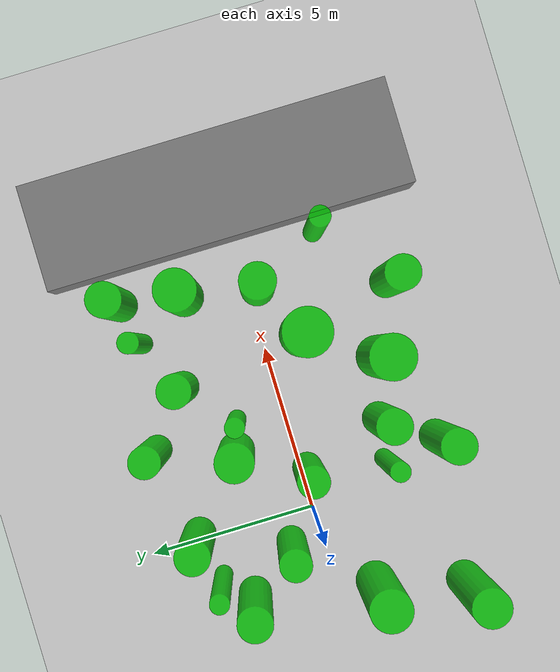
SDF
<?xml version="1.0"?>
<sdf version="1.6">
  <world name="platform">
    <include><uri>model://sun</uri></include>
    <include><uri>model://ground_plane</uri></include>
    <physics name="default_physics" default="0" type="ode">
      <gravity>0 0 -9.8066</gravity>
      <ode>
        <solver><type>quick</type><iters>10</iters><sor>1.3</sor></solver>
        <constraints>
          <cfm>0</cfm>
          <erp>0.2</erp>
          <contact_max_correcting_vel>100</contact_max_correcting_vel>
          <contact_surface_layer>0.001</contact_surface_layer>
        </constraints>
      </ode>
      <max_step_size>0.004</max_step_size>
      <real_time_factor>1</real_time_factor>
      <real_time_update_rate>250</real_time_update_rate>
    </physics>
    <model name="platform_obstacle_0">
      <static>true</static>
      <pose>-3.400 -3.800 1.500 0 0 0</pose>
      <link name="link">
        <collision name="collision">
          <geometry><cylinder><radius>0.550</radius><length>3.000</length></cylinder></geometry>
        </collision>
        <visual name="visual">
          <geometry><cylinder><radius>0.550</radius><length>3.000</length></cylinder></geometry>
          <material><ambient>0 0.8 0 0.85</ambient><diffuse>0 0.8 0 0.85</diffuse></material>
        </visual>
      </link>
    </model>
    <model name="platform_obstacle_1">
      <static>true</static>
      <pose>-2.700 -1.200 1.500 0 0 0</pose>
      <link name="link">
        <collision name="collision">
          <geometry><cylinder><radius>0.600</radius><length>3.000</length></cylinder></geometry>
        </collision>
        <visual name="visual">
          <geometry><cylinder><radius>0.600</radius><length>3.000</length></cylinder></geometry>
          <material><ambient>0 0.8 0 0.85</ambient><diffuse>0 0.8 0 0.85</diffuse></material>
        </visual>
      </link>
    </model>
    <model name="platform_obstacle_2">
      <static>true</static>
      <pose>-2.000 2.400 1.500 0 0 0</pose>
      <link name="link">
        <collision name="collision">
          <geometry><cylinder><radius>0.500</radius><length>3.000</length></cylinder></geometry>
        </collision>
        <visual name="visual">
          <geometry><cylinder><radius>0.500</radius><length>3.000</length></cylinder></geometry>
          <material><ambient>0 0.8 0 0.85</ambient><diffuse>0 0.8 0 0.85</diffuse></material>
        </visual>
      </link>
    </model>
    <model name="platform_obstacle_3">
      <static>true</static>
      <pose>1.200 -0.200 1.500 0 0 0</pose>
      <link name="link">
        <collision name="collision">
          <geometry><cylinder><radius>0.450</radius><length>3.000</length></cylinder></geometry>
        </collision>
        <visual name="visual">
          <geometry><cylinder><radius>0.450</radius><length>3.000</length></cylinder></geometry>
          <material><ambient>0 0.8 0 0.85</ambient><diffuse>0 0.8 0 0.85</diffuse></material>
        </visual>
      </link>
    </model>
    <model name="platform_obstacle_4">
      <static>true</static>
      <pose>0.200 3.500 1.500 0 0 0</pose>
      <link name="link">
        <collision name="collision">
          <geometry><cylinder><radius>0.500</radius><length>3.000</length></cylinder></geometry>
        </collision>
        <visual name="visual">
          <geometry><cylinder><radius>0.500</radius><length>3.000</length></cylinder></geometry>
          <material><ambient>0 0.8 0 0.85</ambient><diffuse>0 0.8 0 0.85</diffuse></material>
        </visual>
      </link>
    </model>
    <model name="platform_obstacle_5">
      <static>true</static>
      <pose>1.000 -4.200 1.500 0 0 0</pose>
      <link name="link">
        <collision name="collision">
          <geometry><cylinder><radius>0.500</radius><length>3.000</length></cylinder></geometry>
        </collision>
        <visual name="visual">
          <geometry><cylinder><radius>0.500</radius><length>3.000</length></cylinder></geometry>
          <material><ambient>0 0.8 0 0.85</ambient><diffuse>0 0.8 0 0.85</diffuse></material>
        </visual>
      </link>
    </model>
    <model name="platform_obstacle_6">
      <static>true</static>
      <pose>2.300 1.700 1.500 0 0 0</pose>
      <link name="link">
        <collision name="collision">
          <geometry><cylinder><radius>0.550</radius><length>3.000</length></cylinder></geometry>
        </collision>
        <visual name="visual">
          <geometry><cylinder><radius>0.550</radius><length>3.000</length></cylinder></geometry>
          <material><ambient>0 0.8 0 0.85</ambient><diffuse>0 0.8 0 0.85</diffuse></material>
        </visual>
      </link>
    </model>
    <model name="platform_obstacle_7">
      <static>true</static>
      <pose>3.000 4.000 1.500 0 0 0</pose>
      <link name="link">
        <collision name="collision">
          <geometry><cylinder><radius>0.450</radius><length>3.000</length></cylinder></geometry>
        </collision>
        <visual name="visual">
          <geometry><cylinder><radius>0.450</radius><length>3.000</length></cylinder></geometry>
          <material><ambient>0 0.8 0 0.85</ambient><diffuse>0 0.8 0 0.85</diffuse></material>
        </visual>
      </link>
    </model>
    <model name="platform_obstacle_8">
      <static>true</static>
      <pose>3.800 -3.200 1.500 0 0 0</pose>
      <link name="link">
        <collision name="collision">
          <geometry><cylinder><radius>0.650</radius><length>3.000</length></cylinder></geometry>
        </collision>
        <visual name="visual">
          <geometry><cylinder><radius>0.650</radius><length>3.000</length></cylinder></geometry>
          <material><ambient>0 0.8 0 0.85</ambient><diffuse>0 0.8 0 0.85</diffuse></material>
        </visual>
      </link>
    </model>
    <model name="platform_obstacle_9">
      <static>true</static>
      <pose>5.100 -1.200 1.500 0 0 0</pose>
      <link name="link">
        <collision name="collision">
          <geometry><cylinder><radius>0.700</radius><length>3.000</length></cylinder></geometry>
        </collision>
        <visual name="visual">
          <geometry><cylinder><radius>0.700</radius><length>3.000</length></cylinder></geometry>
          <material><ambient>0 0.8 0 0.85</ambient><diffuse>0 0.8 0 0.85</diffuse></material>
        </visual>
      </link>
    </model>
    <model name="platform_obstacle_10">
      <static>true</static>
      <pose>5.900 -4.100 1.500 0 0 0</pose>
      <link name="link">
        <collision name="collision">
          <geometry><cylinder><radius>0.500</radius><length>3.000</length></cylinder></geometry>
        </collision>
        <visual name="visual">
          <geometry><cylinder><radius>0.500</radius><length>3.000</length></cylinder></geometry>
          <material><ambient>0 0.8 0 0.85</ambient><diffuse>0 0.8 0 0.85</diffuse></material>
        </visual>
      </link>
    </model>
    <model name="platform_obstacle_11">
      <static>true</static>
      <pose>7.200 1.900 1.500 0 0 0</pose>
      <link name="link">
        <collision name="collision">
          <geometry><cylinder><radius>0.600</radius><length>3.000</length></cylinder></geometry>
        </collision>
        <visual name="visual">
          <geometry><cylinder><radius>0.600</radius><length>3.000</length></cylinder></geometry>
          <material><ambient>0 0.8 0 0.85</ambient><diffuse>0 0.8 0 0.85</diffuse></material>
        </visual>
      </link>
    </model>
    <model name="platform_obstacle_12">
      <static>true</static>
      <pose>7.500 3.800 1.500 0 0 0</pose>
      <link name="link">
        <collision name="collision">
          <geometry><cylinder><radius>0.500</radius><length>3.000</length></cylinder></geometry>
        </collision>
        <visual name="visual">
          <geometry><cylinder><radius>0.500</radius><length>3.000</length></cylinder></geometry>
          <material><ambient>0 0.8 0 0.85</ambient><diffuse>0 0.8 0 0.85</diffuse></material>
        </visual>
      </link>
    </model>
    <model name="platform_obstacle_13">
      <static>true</static>
      <pose>-0.800 0.900 1.500 0 0 0</pose>
      <link name="link">
        <collision name="collision">
          <geometry><cylinder><radius>0.450</radius><length>3.000</length></cylinder></geometry>
        </collision>
        <visual name="visual">
          <geometry><cylinder><radius>0.450</radius><length>3.000</length></cylinder></geometry>
          <material><ambient>0 0.8 0 0.85</ambient><diffuse>0 0.8 0 0.85</diffuse></material>
        </visual>
      </link>
    </model>
    <model name="platform_obstacle_14">
      <static>true</static>
      <pose>2.000 -2.700 1.500 0 0 0</pose>
      <link name="link">
        <collision name="collision">
          <geometry><cylinder><radius>0.500</radius><length>3.000</length></cylinder></geometry>
        </collision>
        <visual name="visual">
          <geometry><cylinder><radius>0.500</radius><length>3.000</length></cylinder></geometry>
          <material><ambient>0 0.8 0 0.85</ambient><diffuse>0 0.8 0 0.85</diffuse></material>
        </visual>
      </link>
    </model>
    <model name="platform_obstacle_15">
      <static>true</static>
      <pose>4.600 2.700 1.500 0 0 0</pose>
      <link name="link">
        <collision name="collision">
          <geometry><cylinder><radius>0.480</radius><length>3.000</length></cylinder></geometry>
        </collision>
        <visual name="visual">
          <geometry><cylinder><radius>0.480</radius><length>3.000</length></cylinder></geometry>
          <material><ambient>0 0.8 0 0.85</ambient><diffuse>0 0.8 0 0.85</diffuse></material>
        </visual>
      </link>
    </model>
    <model name="platform_obstacle_16">
      <static>true</static>
      <pose>6.800 -0.300 1.500 0 0 0</pose>
      <link name="link">
        <collision name="collision">
          <geometry><cylinder><radius>0.520</radius><length>3.000</length></cylinder></geometry>
        </collision>
        <visual name="visual">
          <geometry><cylinder><radius>0.520</radius><length>3.000</length></cylinder></geometry>
          <material><ambient>0 0.8 0 0.85</ambient><diffuse>0 0.8 0 0.85</diffuse></material>
        </visual>
      </link>
    </model>
    <model name="goal_platform">
      <static>true</static>
      <pose>10.000 0.000 0.525 0 0 0</pose>
      <link name="link">
        <collision name="collision">
          <geometry><box><size>3.200 11.200 1.050</size></box></geometry>
        </collision>
        <visual name="visual">
          <geometry><box><size>3.200 11.200 1.050</size></box></geometry>
          <material><ambient>0.48 0.48 0.48 1</ambient><diffuse>0.48 0.48 0.48 1</diffuse></material>
        </visual>
      </link>
    </model>
    <model name="platform_moving_obstacle_0">
      <static>false</static>
      <pose>0.800 -2.500 1.500 0 0 0</pose>
      <link name="link">
        <gravity>false</gravity>
        <inertial>
          <mass>1.0</mass>
          <inertia>
            <ixx>0.1</ixx><ixy>0.0</ixy><ixz>0.0</ixz>
            <iyy>0.1</iyy><iyz>0.0</iyz>
            <izz>0.1</izz>
          </inertia>
        </inertial>
        <collision name="collision">
          <geometry><cylinder><radius>0.280</radius><length>3.000</length></cylinder></geometry>
        </collision>
        <visual name="visual">
          <geometry><cylinder><radius>0.280</radius><length>3.000</length></cylinder></geometry>
          <material><ambient>0 0.8 0 0.85</ambient><diffuse>0 0.8 0 0.85</diffuse></material>
        </visual>
      </link>
    </model>
    <model name="platform_moving_obstacle_1">
      <static>false</static>
      <pose>3.200 1.420 1.500 0 0 0</pose>
      <link name="link">
        <gravity>false</gravity>
        <inertial>
          <mass>1.0</mass>
          <inertia>
            <ixx>0.1</ixx><ixy>0.0</ixy><ixz>0.0</ixz>
            <iyy>0.1</iyy><iyz>0.0</iyz>
            <izz>0.1</izz>
          </inertia>
        </inertial>
        <collision name="collision">
          <geometry><cylinder><radius>0.280</radius><length>3.000</length></cylinder></geometry>
        </collision>
        <visual name="visual">
          <geometry><cylinder><radius>0.280</radius><length>3.000</length></cylinder></geometry>
          <material><ambient>0 0.8 0 0.85</ambient><diffuse>0 0.8 0 0.85</diffuse></material>
        </visual>
      </link>
    </model>
    <model name="platform_moving_obstacle_2">
      <static>false</static>
      <pose>6.200 3.500 1.500 0 0 0</pose>
      <link name="link">
        <gravity>false</gravity>
        <inertial>
          <mass>1.0</mass>
          <inertia>
            <ixx>0.1</ixx><ixy>0.0</ixy><ixz>0.0</ixz>
            <iyy>0.1</iyy><iyz>0.0</iyz>
            <izz>0.1</izz>
          </inertia>
        </inertial>
        <collision name="collision">
          <geometry><cylinder><radius>0.300</radius><length>3.000</length></cylinder></geometry>
        </collision>
        <visual name="visual">
          <geometry><cylinder><radius>0.300</radius><length>3.000</length></cylinder></geometry>
          <material><ambient>0 0.8 0 0.85</ambient><diffuse>0 0.8 0 0.85</diffuse></material>
        </visual>
      </link>
    </model>
    <model name="platform_moving_obstacle_3">
      <static>false</static>
      <pose>-1.200 3.155 1.500 0 0 0</pose>
      <link name="link">
        <gravity>false</gravity>
        <inertial>
          <mass>1.0</mass>
          <inertia>
            <ixx>0.1</ixx><ixy>0.0</ixy><ixz>0.0</ixz>
            <iyy>0.1</iyy><iyz>0.0</iyz>
            <izz>0.1</izz>
          </inertia>
        </inertial>
        <collision name="collision">
          <geometry><cylinder><radius>0.280</radius><length>3.000</length></cylinder></geometry>
        </collision>
        <visual name="visual">
          <geometry><cylinder><radius>0.280</radius><length>3.000</length></cylinder></geometry>
          <material><ambient>0 0.8 0 0.85</ambient><diffuse>0 0.8 0 0.85</diffuse></material>
        </visual>
      </link>
    </model>
    <model name="platform_moving_obstacle_4">
      <static>false</static>
      <pose>7.971 -2.400 1.500 0 0 0</pose>
      <link name="link">
        <gravity>false</gravity>
        <inertial>
          <mass>1.0</mass>
          <inertia>
            <ixx>0.1</ixx><ixy>0.0</ixy><ixz>0.0</ixz>
            <iyy>0.1</iyy><iyz>0.0</iyz>
            <izz>0.1</izz>
          </inertia>
        </inertial>
        <collision name="collision">
          <geometry><cylinder><radius>0.300</radius><length>3.000</length></cylinder></geometry>
        </collision>
        <visual name="visual">
          <geometry><cylinder><radius>0.300</radius><length>3.000</length></cylinder></geometry>
          <material><ambient>0 0.8 0 0.85</ambient><diffuse>0 0.8 0 0.85</diffuse></material>
        </visual>
      </link>
    </model>
  </world>
</sdf>
